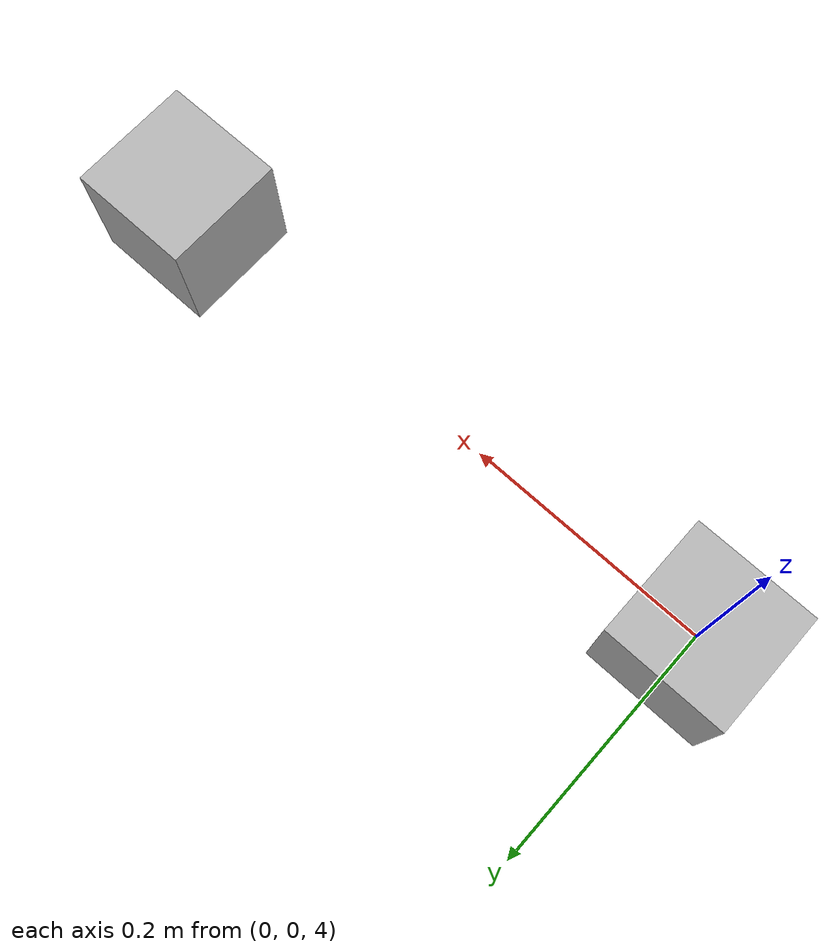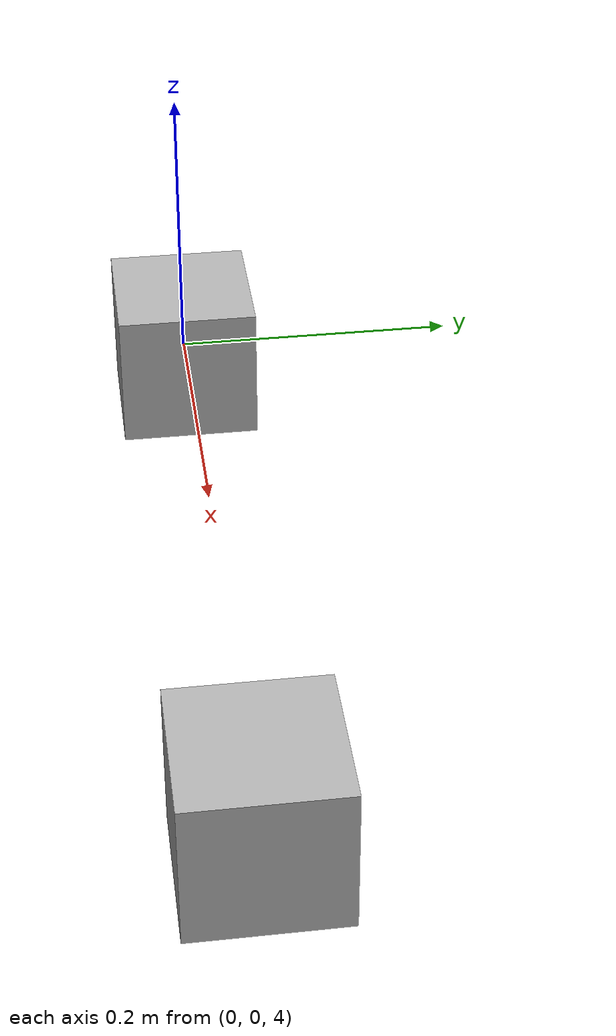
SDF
<sdf version='1.10'>
  <world name='world_cam'>
    <physics name='1ms' type='ignored'>
      <max_step_size>0.001</max_step_size>
      <real_time_factor>1</real_time_factor>
      <real_time_update_rate>1000</real_time_update_rate>
    </physics>
    <plugin name='gz::sim::systems::Physics' filename='gz-sim-physics-system'/>
    <plugin name='gz::sim::systems::UserCommands' filename='gz-sim-user-commands-system'/>
    <plugin name='gz::sim::systems::SceneBroadcaster' filename='gz-sim-scene-broadcaster-system'/>
    <plugin name='gz::sim::systems::Contact' filename='gz-sim-contact-system'/>
    <plugin
      filename="gz-sim-sensors-system"
      name="gz::sim::systems::Sensors">
      <render_engine>ogre2</render_engine>
    </plugin>
    <gravity>0 0 -9.8000000000000007</gravity>
    <magnetic_field>5.5644999999999998e-06 2.2875799999999999e-05 -4.2388400000000002e-05</magnetic_field>
    <atmosphere type='adiabatic'/>
    <scene>
      <ambient>0.400000006 0.400000006 0.400000006 1</ambient>
      <background>0.699999988 0.699999988 0.699999988 1</background>
      <shadows>true</shadows>
    </scene>
    <model name='ground_plane'>
      <plugin filename="gz-sim-detachable-joint-system"
            name="gz::sim::systems::DetachableJoint">
        <parent_link>link</parent_link>
        <child_model>cube_id_11</child_model>
        <child_link>marker_id_11</child_link>
        <attach_topic>/FC11/attach</attach_topic>
        <detach_topic>/FC11/detach</detach_topic>
        <output_topic>/FC11/state</output_topic>
      </plugin>
      <plugin filename="gz-sim-detachable-joint-system"
            name="gz::sim::systems::DetachableJoint">
        <parent_link>link</parent_link>
        <child_model>cube_id_12</child_model>
        <child_link>marker_id_12</child_link>
        <attach_topic>/FC12/attach</attach_topic>
        <detach_topic>/FC12/detach</detach_topic>
        <output_topic>/FC12/state</output_topic>
      </plugin>
      <plugin filename="gz-sim-detachable-joint-system"
            name="gz::sim::systems::DetachableJoint">
        <parent_link>link</parent_link>
        <child_model>cube_id_21</child_model>
        <child_link>marker_id_21</child_link>
        <attach_topic>/FC21/attach</attach_topic>
        <detach_topic>/FC21/detach</detach_topic>
        <output_topic>/FC21/state</output_topic>
      </plugin>
      <static>true</static>
      <link name='link'>
        <collision name='collision'>
          <geometry>
            <plane>
              <normal>0 0 1</normal>
              <size>100 100</size>
            </plane>
          </geometry>
          <surface>
            <friction>
              <ode/>
            </friction>
            <bounce/>
            <contact/>
          </surface>
        </collision>
        <visual name='visual'>
          <geometry>
            <plane>
              <normal>0 0 1</normal>
              <size>100 100</size>
            </plane>
          </geometry>
          <material>
            <ambient>0.800000012 0.800000012 0.800000012 1</ambient>
            <diffuse>0.800000012 0.800000012 0.800000012 1</diffuse>
            <specular>0.800000012 0.800000012 0.800000012 1</specular>
          </material>
        </visual>
        <visual name='base_link_fixed_joint_lump__marker_link_visual_1'>
          <pose>0 0 0.01 0 0 0</pose>
          <geometry>
            <mesh>
              <scale>1 1 1</scale>
              <uri>../../../../robot_custom_description/share/robot_custom_description/models/markers/marker_00.dae</uri>
            </mesh>
          </geometry>
        </visual>
        <visual name='marker_op_1'>
          <pose>1 2 0.01 0 0 0</pose>
          <geometry>
            <mesh>
              <scale>1 1 1</scale>
              <uri>../../../../robot_custom_description/share/robot_custom_description/models/markers/marker_99.dae</uri>
            </mesh>
          </geometry>
        </visual>
        <visual name='marker_op_2'>
          <pose>1 0 0.01 0 0 0</pose>
          <geometry>
            <mesh>
              <scale>1 1 1</scale>
              <uri>../../../../robot_custom_description/share/robot_custom_description/models/markers/marker_98.dae</uri>
            </mesh>
          </geometry>
        </visual>
        <visual name='marker_op_3'>
          <pose>1 -2 0.01 0 0 0</pose>
          <geometry>
            <mesh>
              <scale>1 1 1</scale>
              <uri>../../../../robot_custom_description/share/robot_custom_description/models/markers/marker_97.dae</uri>
            </mesh>
          </geometry>
        </visual>
        <visual name='marker_op_4'>
          <pose>0 2 0.01 0 0 0</pose>
          <geometry>
            <mesh>
              <scale>1 1 1</scale>
              <uri>../../../../robot_custom_description/share/robot_custom_description/models/markers/marker_96.dae</uri>
            </mesh>
          </geometry>
        </visual>
        <visual name='marker_op_5'>
          <pose>0 -2 0.01 0 0 0</pose>
          <geometry>
            <mesh>
              <scale>1 1 1</scale>
              <uri>../../../../robot_custom_description/share/robot_custom_description/models/markers/marker_95.dae</uri>
            </mesh>
          </geometry>
        </visual>
        <visual name='marker_op_6'>
          <pose>-1 2 0.01 0 0 0</pose>
          <geometry>
            <mesh>
              <scale>1 1 1</scale>
              <uri>../../../../robot_custom_description/share/robot_custom_description/models/markers/marker_94.dae</uri>
            </mesh>
          </geometry>
        </visual>
        <visual name='marker_op_7'>
          <pose>-1 0 0.01 0 0 0</pose>
          <geometry>
            <mesh>
              <scale>1 1 1</scale>
              <uri>../../../../robot_custom_description/share/robot_custom_description/models/markers/marker_93.dae</uri>
            </mesh>
          </geometry>
        </visual>
        <visual name='marker_op_8'>
          <pose>-1 -2 0.01 0 0 0</pose>
          <geometry>
            <mesh>
              <scale>1 1 1</scale>
              <uri>../../../../robot_custom_description/share/robot_custom_description/models/markers/marker_92.dae</uri>
            </mesh>
          </geometry>
        </visual>
        <pose>0 0 0 0 0 0</pose>
        <inertial>
          <pose>0 0 0 0 0 0</pose>
          <mass>1</mass>
          <inertia>
            <ixx>1</ixx>
            <ixy>0</ixy>
            <ixz>0</ixz>
            <iyy>1</iyy>
            <iyz>0</iyz>
            <izz>1</izz>
          </inertia>
        </inertial>
        <enable_wind>false</enable_wind>
      </link>
      <pose>0 0 0 0 0 0</pose>
      <self_collide>false</self_collide>
    </model>
    <model name='cam'>
      <static>true</static>
      <pose>0 0 4 0 1.5708 0</pose>
      <link name='cam_link'>
        <inertial>
          <inertia>
            <ixx>0.16666</ixx>
            <ixy>0</ixy>
            <ixz>0</ixz>
            <iyy>0.16666</iyy>
            <iyz>0</iyz>
            <izz>0.16666</izz>
          </inertia>
          <mass>1</mass>
          <pose>0 0 0 0 0 0</pose>
        </inertial>
        <collision name='cam_collision'>
          <geometry>
            <box>
              <size>0.1 0.1 0.1</size>
            </box>
          </geometry>
          <surface>
            <friction>
              <ode/>
            </friction>
            <bounce/>
            <contact/>
          </surface>
        </collision>
        <visual name='cam_visual'>
          <geometry>
            <box>
              <size>0.1 0.1 0.1</size>
            </box>
          </geometry>
          <material>
            <ambient>0.300000012 0.300000012 0.300000012 1</ambient>
            <diffuse>0.699999988 0.699999988 0.699999988 1</diffuse>
            <specular>1 1 1 1</specular>
          </material>
        </visual>
        <sensor name="cam_1" type="camera">
          <update_rate>30</update_rate>
          <topic>/cam_1</topic>
          <camera>
            <horizontal_fov>1.39626</horizontal_fov>
            <image>
              <width>3840</width>
              <height>2160</height>
            </image>
            <clip>
                <near>0.02</near>
                <far>300</far>
              </clip>
              <noise>
                <type>gaussian</type>
                <mean>0</mean>
                <stddev>0</stddev>
              </noise>
          </camera>
        </sensor>
        <pose>0 0 0 0 0 0</pose>
        <enable_wind>false</enable_wind>
      </link>
      <self_collide>false</self_collide>
    </model>
    <model name='cam_2'>
      <static>true</static>
      <pose>0.5 0 4 0 1.5708 0</pose>
      <link name='cam_link'>
        <inertial>
          <inertia>
            <ixx>0.16666</ixx>
            <ixy>0</ixy>
            <ixz>0</ixz>
            <iyy>0.16666</iyy>
            <iyz>0</iyz>
            <izz>0.16666</izz>
          </inertia>
          <mass>1</mass>
          <pose>0 0 0 0 0 0</pose>
        </inertial>
        <collision name='cam_collision'>
          <geometry>
            <box>
              <size>0.1 0.1 0.1</size>
            </box>
          </geometry>
          <surface>
            <friction>
              <ode/>
            </friction>
            <bounce/>
            <contact/>
          </surface>
        </collision>
        <visual name='cam_visual'>
          <geometry>
            <box>
              <size>0.1 0.1 0.1</size>
            </box>
          </geometry>
          <material>
            <ambient>0.300000012 0.300000012 0.300000012 1</ambient>
            <diffuse>0.699999988 0.699999988 0.699999988 1</diffuse>
            <specular>1 1 1 1</specular>
          </material>
        </visual>
        <sensor name="cam_2" type="camera">
          <update_rate>30</update_rate>
          <topic>/cam_2</topic>
          <camera>
            <horizontal_fov>1.39626</horizontal_fov>
            <image>
              <width>3840</width>
              <height>2160</height>
            </image>
            <clip>
                <near>0.02</near>
                <far>300</far>
              </clip>
              <noise>
                <type>gaussian</type>
                <mean>0</mean>
                <stddev>0</stddev>
              </noise>
          </camera>
        </sensor>
        <pose>0 0 0 0 0 0</pose>
        <enable_wind>false</enable_wind>
      </link>
      <self_collide>false</self_collide>
    </model>
    <light name='sun' type='directional'>
      <pose>0 0 10 0 0 0</pose>
      <cast_shadows>true</cast_shadows>
      <intensity>1</intensity>
      <direction>-0.5 0.10000000000000001 -0.90000000000000002</direction>
      <diffuse>0.800000012 0.800000012 0.800000012 1</diffuse>
      <specular>0.200000003 0.200000003 0.200000003 1</specular>
      <attenuation>
        <range>1000</range>
        <linear>0.01</linear>
        <constant>0.90000000000000002</constant>
        <quadratic>0.001</quadratic>
      </attenuation>
      <spot>
        <inner_angle>0</inner_angle>
        <outer_angle>0</outer_angle>
        <falloff>0</falloff>
      </spot>
    </light>
  </world>
</sdf>
